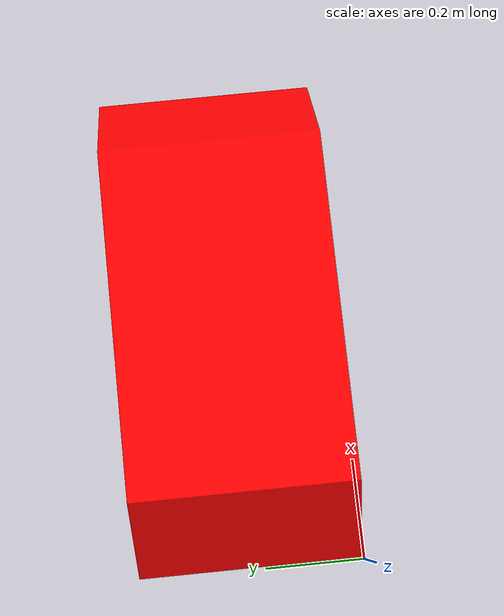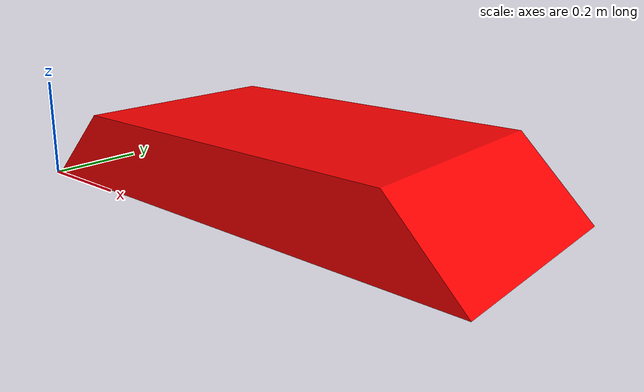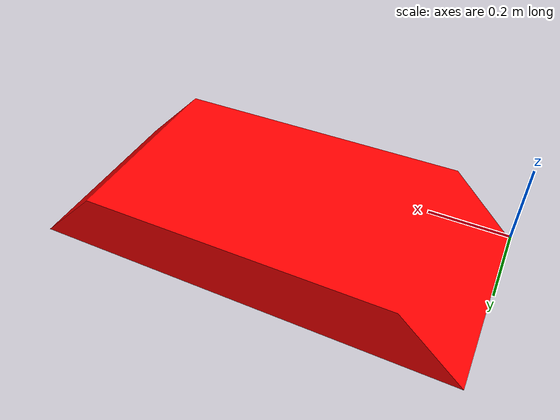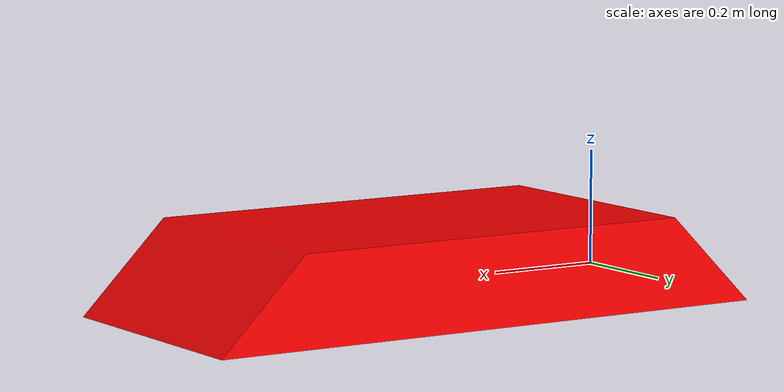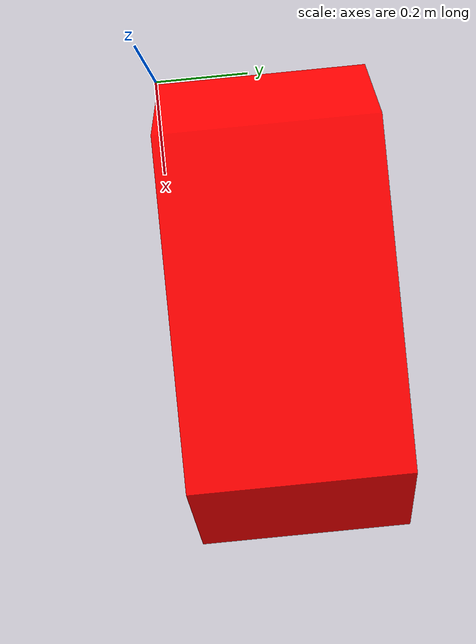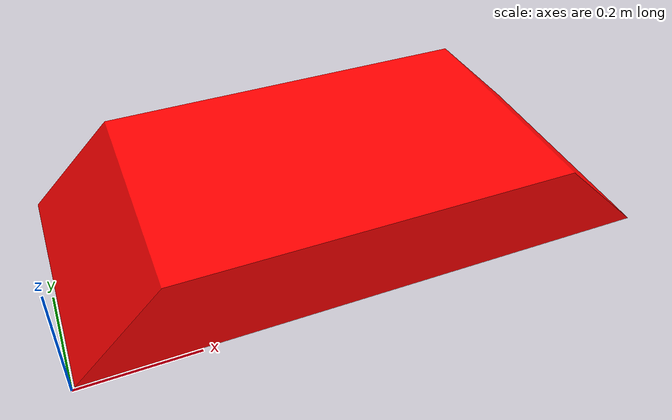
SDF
<?xml version="1.0" ?>
<sdf version="1.6">
  <model name="NonTR-slope">
    <static>true</static>
    <link name="link">
      <collision name="collision">
        <geometry>
          <mesh>
            <scale>1 1 1</scale>
            <uri>model://Non_tr_legged/meshes/black_obst_nontraversable_slope.STL</uri>
          </mesh>
        </geometry>
      </collision>
      <visual name="visual">
        <geometry>
          <mesh>
            <scale>1 1 1</scale>
            <uri>model://Non_tr_legged/meshes/black_obst_nontraversable_slope.STL</uri>
          </mesh>
        </geometry>
        <material>
          <ambient>0.5 0.5 0.5 1</ambient>
          <diffuse>1 0 0 1</diffuse>
          <specular>0.1 0.1 0.1 1</specular>
          <emissive>0 0 0 1</emissive>
        </material>
      </visual>
    </link>
  </model>
</sdf>
